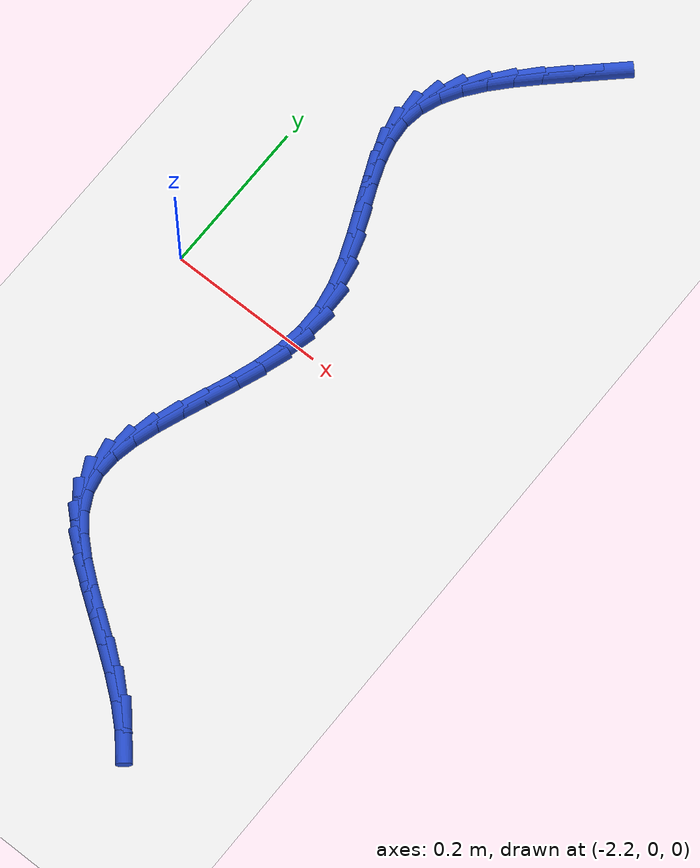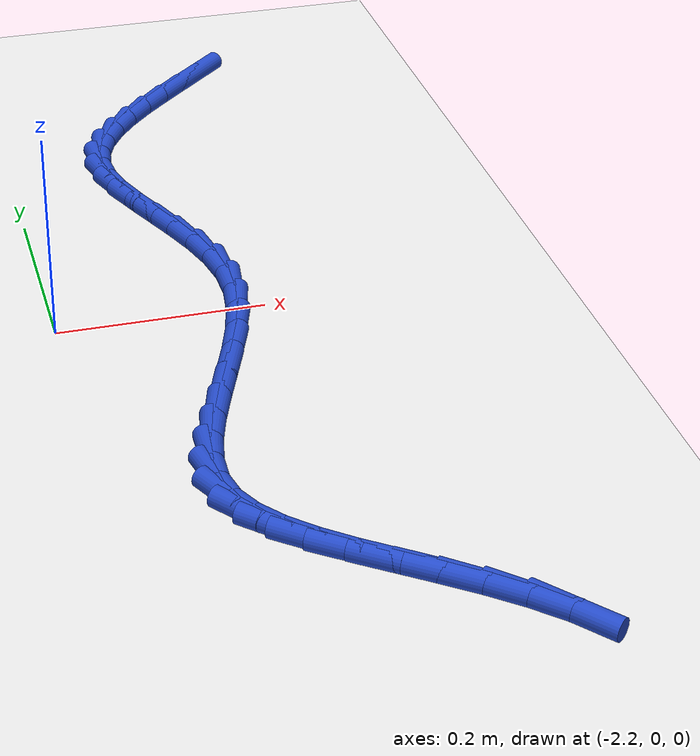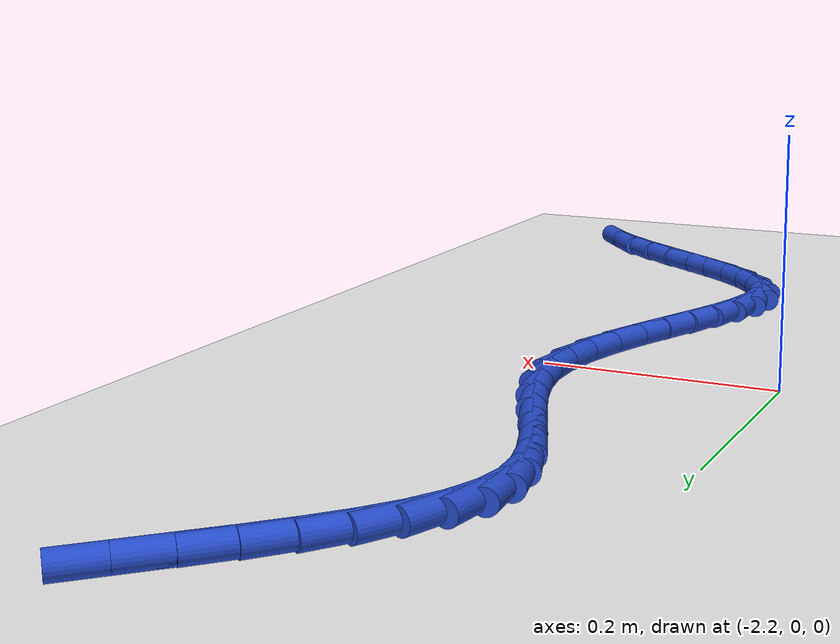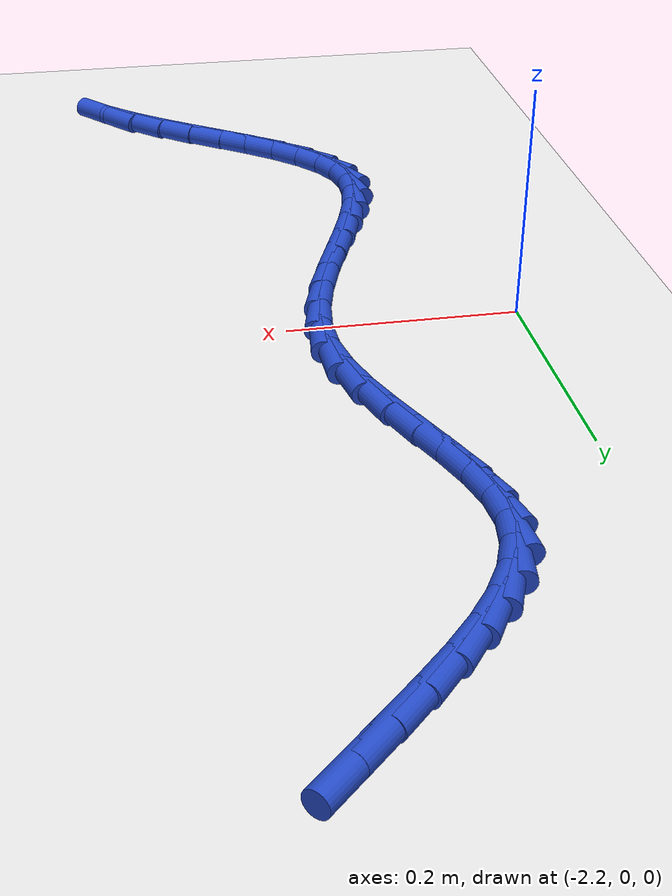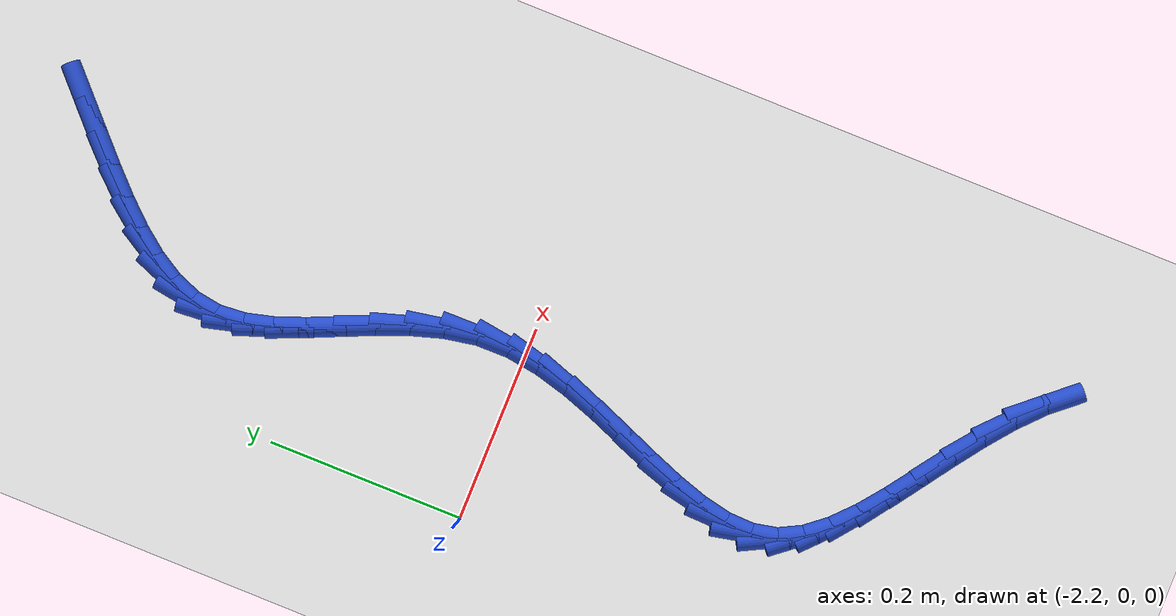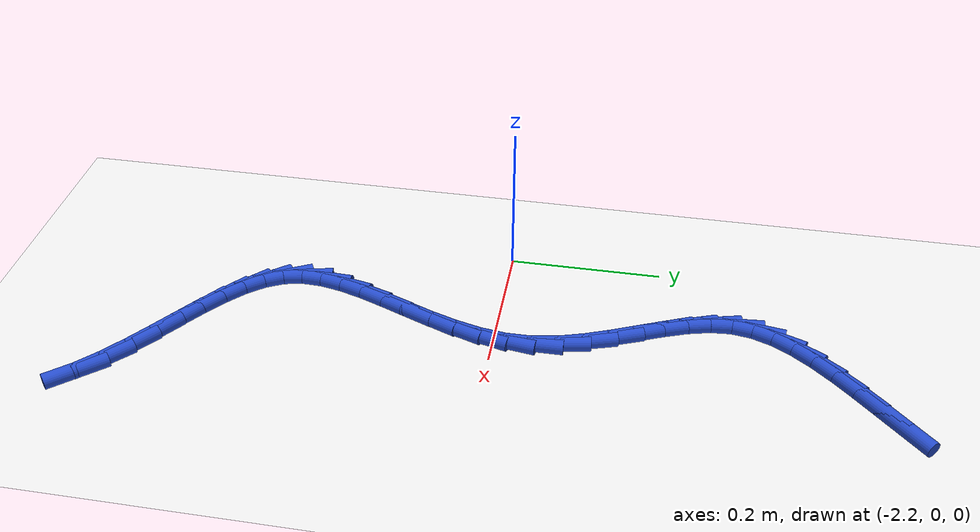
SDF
<sdf version="1.6">
 <world name="default">
  <model name="ground_plane">
   <static>1</static>
   <link name="link">
    <collision name="collision">
     <geometry><plane><normal>0 0 1</normal><size>100 100</size></plane></geometry>
     <surface><friction><ode><mu>100</mu><mu2>50</mu2></ode></friction></surface>
    </collision>
    <visual name="visual">
     <cast_shadows>0</cast_shadows>
     <geometry><plane><normal>0 0 1</normal><size>100 100</size></plane></geometry>
     <material>
      <script><uri>file://media/materials/scripts/gazebo.material</uri><name>Gazebo/WhiteGlow</name></script>
     </material>
    </visual>
   </link>
  </model>
  <model name="line">
   <link name="link_93">
    <pose>-1.9580370159601908 0.49431217745275546 0.01 0 1.57 0.756285347994846</pose>
    <collision name="collision">
     <geometry><cylinder><radius>0.01</radius><length>0.08</length></cylinder></geometry>
    </collision>
    <visual name="visual">
     <material>
      <script><name>Gazebo/Blue</name><uri>file://media/materials/scripts/gazebo.material</uri></script>
     </material>
     <geometry><cylinder><radius>0.01</radius><length>0.08</length></cylinder></geometry>
    </visual>
   </link>
   <link name="link_94">
    <pose>-1.984149384670307 0.4696776123885767 0.01 0 1.57 0.7586242180463706</pose>
    <collision name="collision">
     <geometry><cylinder><radius>0.01</radius><length>0.08</length></cylinder></geometry>
    </collision>
    <visual name="visual">
     <material>
      <script><name>Gazebo/Blue</name><uri>file://media/materials/scripts/gazebo.material</uri></script>
     </material>
     <geometry><cylinder><radius>0.01</radius><length>0.08</length></cylinder></geometry>
    </visual>
   </link>
   <link name="link_95">
    <pose>-2.0097235682608656 0.44543747352765645 0.01 0 1.57 0.783260770578199</pose>
    <collision name="collision">
     <geometry><cylinder><radius>0.01</radius><length>0.08</length></cylinder></geometry>
    </collision>
    <visual name="visual">
     <material>
      <script><name>Gazebo/Blue</name><uri>file://media/materials/scripts/gazebo.material</uri></script>
     </material>
     <geometry><cylinder><radius>0.01</radius><length>0.08</length></cylinder></geometry>
    </visual>
   </link>
   <link name="link_96">
    <pose>-2.033892516138665 0.42137162251963123 0.01 0 1.57 0.8335053067148639</pose>
    <collision name="collision">
     <geometry><cylinder><radius>0.01</radius><length>0.08</length></cylinder></geometry>
    </collision>
    <visual name="visual">
     <material>
      <script><name>Gazebo/Blue</name><uri>file://media/materials/scripts/gazebo.material</uri></script>
     </material>
     <geometry><cylinder><radius>0.01</radius><length>0.08</length></cylinder></geometry>
    </visual>
   </link>
   <link name="link_97">
    <pose>-2.055789177710503 0.39725992101413615 0.01 0 1.57 0.9149652803685453</pose>
    <collision name="collision">
     <geometry><cylinder><radius>0.01</radius><length>0.08</length></cylinder></geometry>
    </collision>
    <visual name="visual">
     <material>
      <script><name>Gazebo/Blue</name><uri>file://media/materials/scripts/gazebo.material</uri></script>
     </material>
     <geometry><cylinder><radius>0.01</radius><length>0.08</length></cylinder></geometry>
    </visual>
   </link>
   <link name="link_98">
    <pose>-2.0745465023831784 0.3728822306608067 0.01 0 1.57 1.035340642462793</pose>
    <collision name="collision">
     <geometry><cylinder><radius>0.01</radius><length>0.08</length></cylinder></geometry>
    </collision>
    <visual name="visual">
     <material>
      <script><name>Gazebo/Blue</name><uri>file://media/materials/scripts/gazebo.material</uri></script>
     </material>
     <geometry><cylinder><radius>0.01</radius><length>0.08</length></cylinder></geometry>
    </visual>
   </link>
   <link name="link_99">
    <pose>-2.08929743956349 0.3480184131092792 0.01 0 1.57 1.2021634190794563</pose>
    <collision name="collision">
     <geometry><cylinder><radius>0.01</radius><length>0.08</length></cylinder></geometry>
    </collision>
    <visual name="visual">
     <material>
      <script><name>Gazebo/Blue</name><uri>file://media/materials/scripts/gazebo.material</uri></script>
     </material>
     <geometry><cylinder><radius>0.01</radius><length>0.08</length></cylinder></geometry>
    </visual>
   </link>
   <link name="link_100">
    <pose>-2.0991749386582343 0.3224483300091886 0.01 0 1.57 1.4159125307310005</pose>
    <collision name="collision">
     <geometry><cylinder><radius>0.01</radius><length>0.08</length></cylinder></geometry>
    </collision>
    <visual name="visual">
     <material>
      <script><name>Gazebo/Blue</name><uri>file://media/materials/scripts/gazebo.material</uri></script>
     </material>
     <geometry><cylinder><radius>0.01</radius><length>0.08</length></cylinder></geometry>
    </visual>
   </link>
   <link name="link_101">
    <pose>-2.103311949074212 0.29595184301017136 0.01 0 1.57 -1.4927322909298872</pose>
    <collision name="collision">
     <geometry><cylinder><radius>0.01</radius><length>0.08</length></cylinder></geometry>
    </collision>
    <visual name="visual">
     <material>
      <script><name>Gazebo/Blue</name><uri>file://media/materials/scripts/gazebo.material</uri></script>
     </material>
     <geometry><cylinder><radius>0.01</radius><length>0.08</length></cylinder></geometry>
    </visual>
   </link>
   <link name="link_102">
    <pose>-2.1011527564092045 0.2683488011907032 0.01 0 1.57 -1.3181826498003149</pose>
    <collision name="collision">
     <geometry><cylinder><radius>0.01</radius><length>0.08</length></cylinder></geometry>
    </collision>
    <visual name="visual">
     <material>
      <script><name>Gazebo/Blue</name><uri>file://media/materials/scripts/gazebo.material</uri></script>
     </material>
     <geometry><cylinder><radius>0.01</radius><length>0.08</length></cylinder></geometry>
    </visual>
   </link>
   <link name="link_103">
    <pose>-2.0937487896363076 0.23966547207086344 0.01 0 1.57 -1.2133962109726175</pose>
    <collision name="collision">
     <geometry><cylinder><radius>0.01</radius><length>0.08</length></cylinder></geometry>
    </collision>
    <visual name="visual">
     <material>
      <script><name>Gazebo/Blue</name><uri>file://media/materials/scripts/gazebo.material</uri></script>
     </material>
     <geometry><cylinder><radius>0.01</radius><length>0.08</length></cylinder></geometry>
    </visual>
   </link>
   <link name="link_104">
    <pose>-2.0826685485901475 0.20999453476976604 0.01 0 1.57 -1.163471327115614</pose>
    <collision name="collision">
     <geometry><cylinder><radius>0.01</radius><length>0.08</length></cylinder></geometry>
    </collision>
    <visual name="visual">
     <material>
      <script><name>Gazebo/Blue</name><uri>file://media/materials/scripts/gazebo.material</uri></script>
     </material>
     <geometry><cylinder><radius>0.01</radius><length>0.08</length></cylinder></geometry>
    </visual>
   </link>
   <link name="link_105">
    <pose>-2.069480779485624 0.17942870005114056 0.01 0 1.57 -1.1583045011497672</pose>
    <collision name="collision">
     <geometry><cylinder><radius>0.01</radius><length>0.08</length></cylinder></geometry>
    </collision>
    <visual name="visual">
     <material>
      <script><name>Gazebo/Blue</name><uri>file://media/materials/scripts/gazebo.material</uri></script>
     </material>
     <geometry><cylinder><radius>0.01</radius><length>0.08</length></cylinder></geometry>
    </visual>
   </link>
   <link name="link_106">
    <pose>-2.055754228537636 0.1480606786787152 0.01 0 1.57 -1.1939074344765517</pose>
    <collision name="collision">
     <geometry><cylinder><radius>0.01</radius><length>0.08</length></cylinder></geometry>
    </collision>
    <visual name="visual">
     <material>
      <script><name>Gazebo/Blue</name><uri>file://media/materials/scripts/gazebo.material</uri></script>
     </material>
     <geometry><cylinder><radius>0.01</radius><length>0.08</length></cylinder></geometry>
    </visual>
   </link>
   <link name="link_107">
    <pose>-2.0430576419610813 0.11598318141621941 0.01 0 1.57 -1.2712331061497963</pose>
    <collision name="collision">
     <geometry><cylinder><radius>0.01</radius><length>0.08</length></cylinder></geometry>
    </collision>
    <visual name="visual">
     <material>
      <script><name>Gazebo/Blue</name><uri>file://media/materials/scripts/gazebo.material</uri></script>
     </material>
     <geometry><cylinder><radius>0.01</radius><length>0.08</length></cylinder></geometry>
    </visual>
   </link>
   <link name="link_108">
    <pose>-2.032959765970861 0.08328891902738146 0.01 0 1.57 -1.3941289876243244</pose>
    <collision name="collision">
     <geometry><cylinder><radius>0.01</radius><length>0.08</length></cylinder></geometry>
    </collision>
    <visual name="visual">
     <material>
      <script><name>Gazebo/Blue</name><uri>file://media/materials/scripts/gazebo.material</uri></script>
     </material>
     <geometry><cylinder><radius>0.01</radius><length>0.08</length></cylinder></geometry>
    </visual>
   </link>
   <link name="link_109">
    <pose>-2.0270293467818727 0.05007060227593096 0.01 0 1.57 -1.5598746606808553</pose>
    <collision name="collision">
     <geometry><cylinder><radius>0.01</radius><length>0.08</length></cylinder></geometry>
    </collision>
    <visual name="visual">
     <material>
      <script><name>Gazebo/Blue</name><uri>file://media/materials/scripts/gazebo.material</uri></script>
     </material>
     <geometry><cylinder><radius>0.01</radius><length>0.08</length></cylinder></geometry>
    </visual>
   </link>
   <link name="link_110">
    <pose>-2.026661917273864 0.016429682042948663 0.01 0 1.57 1.4274262761702743</pose>
    <collision name="collision">
     <geometry><cylinder><radius>0.01</radius><length>0.08</length></cylinder></geometry>
    </collision>
    <visual name="visual">
     <material>
      <script><name>Gazebo/Blue</name><uri>file://media/materials/scripts/gazebo.material</uri></script>
     </material>
     <geometry><cylinder><radius>0.01</radius><length>0.08</length></cylinder></geometry>
    </visual>
   </link>
   <link name="link_111">
    <pose>-2.031552311379295 -0.017446575755699197 0.01 0 1.57 1.314479651910289</pose>
    <collision name="collision">
     <geometry><cylinder><radius>0.01</radius><length>0.08</length></cylinder></geometry>
    </collision>
    <visual name="visual">
     <material>
      <script><name>Gazebo/Blue</name><uri>file://media/materials/scripts/gazebo.material</uri></script>
     </material>
     <geometry><cylinder><radius>0.01</radius><length>0.08</length></cylinder></geometry>
    </visual>
   </link>
   <link name="link_112">
    <pose>-2.0404304873442416 -0.051322218844506495 0.01 0 1.57 1.2391256700081232</pose>
    <collision name="collision">
     <geometry><cylinder><radius>0.01</radius><length>0.08</length></cylinder></geometry>
    </collision>
    <visual name="visual">
     <material>
      <script><name>Gazebo/Blue</name><uri>file://media/materials/scripts/gazebo.material</uri></script>
     </material>
     <geometry><cylinder><radius>0.01</radius><length>0.08</length></cylinder></geometry>
    </visual>
   </link>
   <link name="link_113">
    <pose>-2.052015344101069 -0.08496073690952473 0.01 0 1.57 1.196949295795117</pose>
    <collision name="collision">
     <geometry><cylinder><radius>0.01</radius><length>0.08</length></cylinder></geometry>
    </collision>
    <visual name="visual">
     <material>
      <script><name>Gazebo/Blue</name><uri>file://media/materials/scripts/gazebo.material</uri></script>
     </material>
     <geometry><cylinder><radius>0.01</radius><length>0.08</length></cylinder></geometry>
    </visual>
   </link>
   <link name="link_114">
    <pose>-2.0650257805821424 -0.11812561963680625 0.01 0 1.57 1.185702616235374</pose>
    <collision name="collision">
     <geometry><cylinder><radius>0.01</radius><length>0.08</length></cylinder></geometry>
    </collision>
    <visual name="visual">
     <material>
      <script><name>Gazebo/Blue</name><uri>file://media/materials/scripts/gazebo.material</uri></script>
     </material>
     <geometry><cylinder><radius>0.01</radius><length>0.08</length></cylinder></geometry>
    </visual>
   </link>
   <link name="link_115">
    <pose>-2.078180695719828 -0.15058035671240091 0.01 0 1.57 1.2063957661725602</pose>
    <collision name="collision">
     <geometry><cylinder><radius>0.01</radius><length>0.08</length></cylinder></geometry>
    </collision>
    <visual name="visual">
     <material>
      <script><name>Gazebo/Blue</name><uri>file://media/materials/scripts/gazebo.material</uri></script>
     </material>
     <geometry><cylinder><radius>0.01</radius><length>0.08</length></cylinder></geometry>
    </visual>
   </link>
   <link name="link_116">
    <pose>-2.09019898844649 -0.1820884378223611 0.01 0 1.57 1.2641895545733504</pose>
    <collision name="collision">
     <geometry><cylinder><radius>0.01</radius><length>0.08</length></cylinder></geometry>
    </collision>
    <visual name="visual">
     <material>
      <script><name>Gazebo/Blue</name><uri>file://media/materials/scripts/gazebo.material</uri></script>
     </material>
     <geometry><cylinder><radius>0.01</radius><length>0.08</length></cylinder></geometry>
    </visual>
   </link>
   <link name="link_117">
    <pose>-2.0997995576944937 -0.21241335265273814 0.01 0 1.57 1.3693889985816676</pose>
    <collision name="collision">
     <geometry><cylinder><radius>0.01</radius><length>0.08</length></cylinder></geometry>
    </collision>
    <visual name="visual">
     <material>
      <script><name>Gazebo/Blue</name><uri>file://media/materials/scripts/gazebo.material</uri></script>
     </material>
     <geometry><cylinder><radius>0.01</radius><length>0.08</length></cylinder></geometry>
    </visual>
   </link>
   <link name="link_118">
    <pose>-2.105701302396205 -0.24131859088958452 0.01 0 1.57 1.536979821921477</pose>
    <collision name="collision">
     <geometry><cylinder><radius>0.01</radius><length>0.08</length></cylinder></geometry>
    </collision>
    <visual name="visual">
     <material>
      <script><name>Gazebo/Blue</name><uri>file://media/materials/scripts/gazebo.material</uri></script>
     </material>
     <geometry><cylinder><radius>0.01</radius><length>0.08</length></cylinder></geometry>
    </visual>
   </link>
   <link name="link_119">
    <pose>-2.1066231214839886 -0.2685676422189501 0.01 0 1.57 -1.3636990680470986</pose>
    <collision name="collision">
     <geometry><cylinder><radius>0.01</radius><length>0.08</length></cylinder></geometry>
    </collision>
    <visual name="visual">
     <material>
      <script><name>Gazebo/Blue</name><uri>file://media/materials/scripts/gazebo.material</uri></script>
     </material>
     <geometry><cylinder><radius>0.01</radius><length>0.08</length></cylinder></geometry>
    </visual>
   </link>
   <link name="link_120">
    <pose>-2.101294862360169 -0.29392705740231784 0.01 0 1.57 -1.097987487795831</pose>
    <collision name="collision">
     <geometry><cylinder><radius>0.01</radius><length>0.08</length></cylinder></geometry>
    </collision>
    <visual name="visual">
     <material>
      <script><name>Gazebo/Blue</name><uri>file://media/materials/scripts/gazebo.material</uri></script>
     </material>
     <geometry><cylinder><radius>0.01</radius><length>0.08</length></cylinder></geometry>
    </visual>
   </link>
   <link name="link_121">
    <pose>-2.089288885020315 -0.3173989447365047 0.01 0 1.57 -0.8933495654182446</pose>
    <collision name="collision">
     <geometry><cylinder><radius>0.01</radius><length>0.08</length></cylinder></geometry>
    </collision>
    <visual name="visual">
     <material>
      <script><name>Gazebo/Blue</name><uri>file://media/materials/scripts/gazebo.material</uri></script>
     </material>
     <geometry><cylinder><radius>0.01</radius><length>0.08</length></cylinder></geometry>
    </visual>
   </link>
   <link name="link_122">
    <pose>-2.0716030872475693 -0.33938397767979894 0.01 0 1.57 -0.7554633965489833</pose>
    <collision name="collision">
     <geometry><cylinder><radius>0.01</radius><length>0.08</length></cylinder></geometry>
    </collision>
    <visual name="visual">
     <material>
      <script><name>Gazebo/Blue</name><uri>file://media/materials/scripts/gazebo.material</uri></script>
     </material>
     <geometry><cylinder><radius>0.01</radius><length>0.08</length></cylinder></geometry>
    </visual>
   </link>
   <link name="link_123">
    <pose>-2.04937312853463 -0.36032134639519425 0.01 0 1.57 -0.6704004769334354</pose>
    <collision name="collision">
     <geometry><cylinder><radius>0.01</radius><length>0.08</length></cylinder></geometry>
    </collision>
    <visual name="visual">
     <material>
      <script><name>Gazebo/Blue</name><uri>file://media/materials/scripts/gazebo.material</uri></script>
     </material>
     <geometry><cylinder><radius>0.01</radius><length>0.08</length></cylinder></geometry>
    </visual>
   </link>
   <link name="link_124">
    <pose>-2.0237346683741944 -0.38065024104568596 0.01 0 1.57 -0.6255191366599723</pose>
    <collision name="collision">
     <geometry><cylinder><radius>0.01</radius><length>0.08</length></cylinder></geometry>
    </collision>
    <visual name="visual">
     <material>
      <script><name>Gazebo/Blue</name><uri>file://media/materials/scripts/gazebo.material</uri></script>
     </material>
     <geometry><cylinder><radius>0.01</radius><length>0.08</length></cylinder></geometry>
    </visual>
   </link>
   <link name="link_125">
    <pose>-1.9958233662589586 -0.4008098517942689 0.01 0 1.57 -0.6129307978959134</pose>
    <collision name="collision">
     <geometry><cylinder><radius>0.01</radius><length>0.08</length></cylinder></geometry>
    </collision>
    <visual name="visual">
     <material>
      <script><name>Gazebo/Blue</name><uri>file://media/materials/scripts/gazebo.material</uri></script>
     </material>
     <geometry><cylinder><radius>0.01</radius><length>0.08</length></cylinder></geometry>
    </visual>
   </link>
   <link name="link_126">
    <pose>-1.96677488168162 -0.4212393688039384 0.01 0 1.57 -0.6290514488027458</pose>
    <collision name="collision">
     <geometry><cylinder><radius>0.01</radius><length>0.08</length></cylinder></geometry>
    </collision>
    <visual name="visual">
     <material>
      <script><name>Gazebo/Blue</name><uri>file://media/materials/scripts/gazebo.material</uri></script>
     </material>
     <geometry><cylinder><radius>0.01</radius><length>0.08</length></cylinder></geometry>
    </visual>
   </link>
   <link name="link_127">
    <pose>-1.9377248741348765 -0.4423779822376882 0.01 0 1.57 -0.6737398187968084</pose>
    <collision name="collision">
     <geometry><cylinder><radius>0.01</radius><length>0.08</length></cylinder></geometry>
    </collision>
    <visual name="visual">
     <material>
      <script><name>Gazebo/Blue</name><uri>file://media/materials/scripts/gazebo.material</uri></script>
     </material>
     <geometry><cylinder><radius>0.01</radius><length>0.08</length></cylinder></geometry>
    </visual>
   </link>
   <link name="link_128">
    <pose>-1.909809003111425 -0.46466488225851366 0.01 0 1.57 -0.7496363149526825</pose>
    <collision name="collision">
     <geometry><cylinder><radius>0.01</radius><length>0.08</length></cylinder></geometry>
    </collision>
    <visual name="visual">
     <material>
      <script><name>Gazebo/Blue</name><uri>file://media/materials/scripts/gazebo.material</uri></script>
     </material>
     <geometry><cylinder><radius>0.01</radius><length>0.08</length></cylinder></geometry>
    </visual>
   </link>
   <link name="link_129">
    <pose>-1.8841629281039631 -0.4885392590294097 0.01 0 1.57 -0.8612865807618355</pose>
    <collision name="collision">
     <geometry><cylinder><radius>0.01</radius><length>0.08</length></cylinder></geometry>
    </collision>
    <visual name="visual">
     <material>
      <script><name>Gazebo/Blue</name><uri>file://media/materials/scripts/gazebo.material</uri></script>
     </material>
     <geometry><cylinder><radius>0.01</radius><length>0.08</length></cylinder></geometry>
    </visual>
   </link>
  </model>
 </world>
</sdf>
